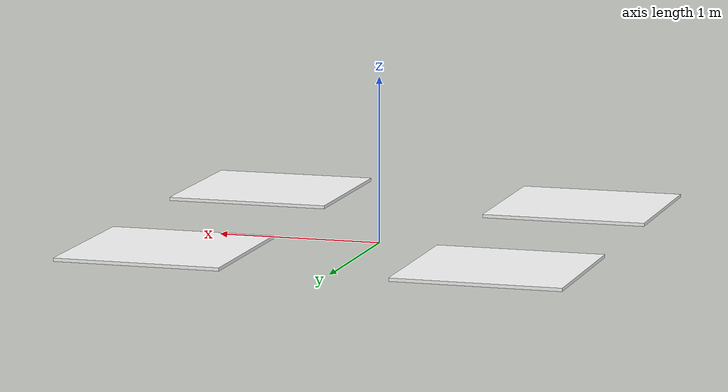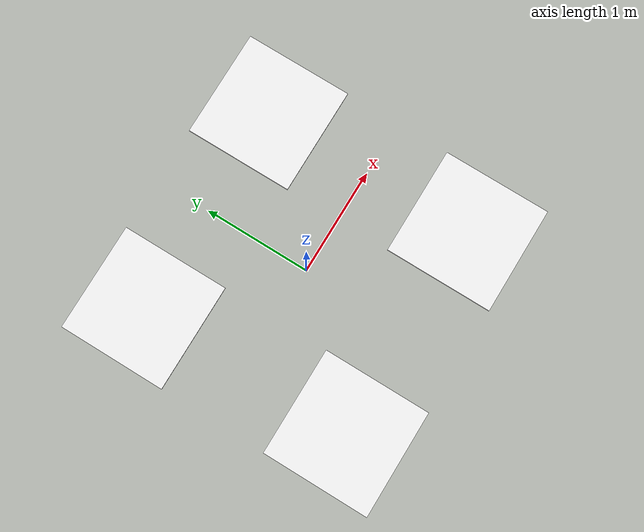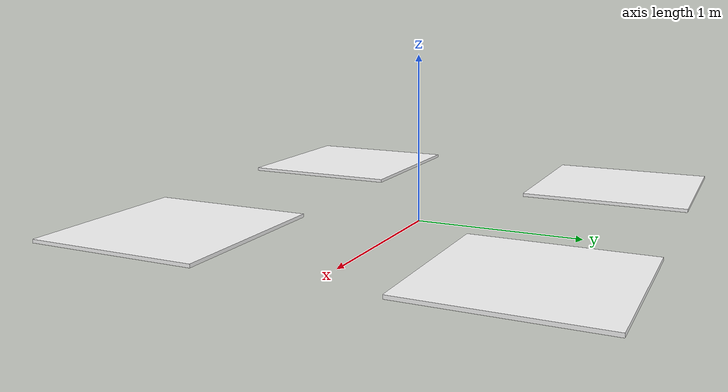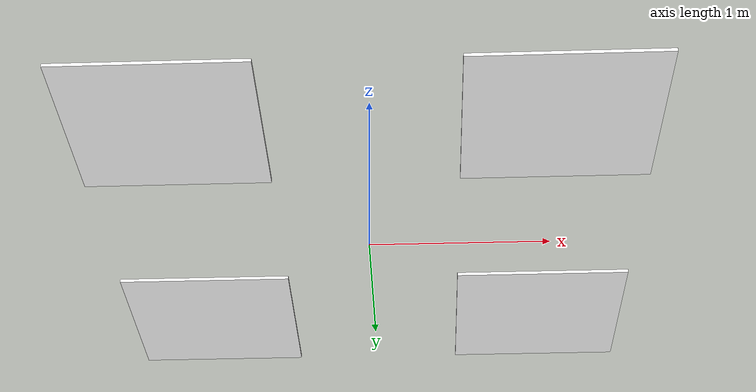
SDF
<?xml version="1.0" ?>
<sdf version="1.5">
  <model name='charging_station'>
    <include>
      <name>charging_spot_1</name>
      <uri>model://charging_spot</uri>
      <pose>1 1 0.1 0 0 0</pose>
    </include>
    <include>
      <name>charging_spot_2</name>
      <uri>model://charging_spot</uri>
      <pose>1 -1 0.1 0 0 0</pose>
    </include>
    <include>
      <name>charging_spot_3</name>
      <uri>model://charging_spot</uri>
      <pose>-1 1 0.1 0 0 0</pose>
    </include>
    <include>
      <name>charging_spot_4</name>
      <uri>model://charging_spot</uri>
      <pose>-1 -1 0.1 0 0 0</pose>
    </include>
  </model>
</sdf>

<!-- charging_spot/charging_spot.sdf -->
<sdf version="1.5">
  <model name="charging_spot">
      <link name="link">
        <collision name="box_collision">
          <geometry>
            <box>
              <size>1 1 0.01</size>
            </box>
          </geometry>
        </collision>

        <visual name="visual">
          <geometry>
            <box>
              <size>1 1 0.02</size>
            </box>
          </geometry>
          <material>
            <script>
              <uri>model://charging_spot/materials/scripts</uri>
              <uri>model://charging_spot/materials/textures</uri>
              <name>VascoVisualMarker0/Marker</name>
            </script>
            <ambient>1 1 1 1</ambient>
            <diffuse>1 1 1 1</diffuse>
            <specular>0 0 0 1</specular>
            <emissive>1 1 1 0</emissive>
            <shader type='vertex'>
              <normal_map>__default__</normal_map>
            </shader>
        </material>
        </visual>

        <sensor name='my_contact' type='contact'>
          <contact>
            <collision>box_collision</collision>
          </contact>
        </sensor>
      </link>
  </model>
</sdf>
